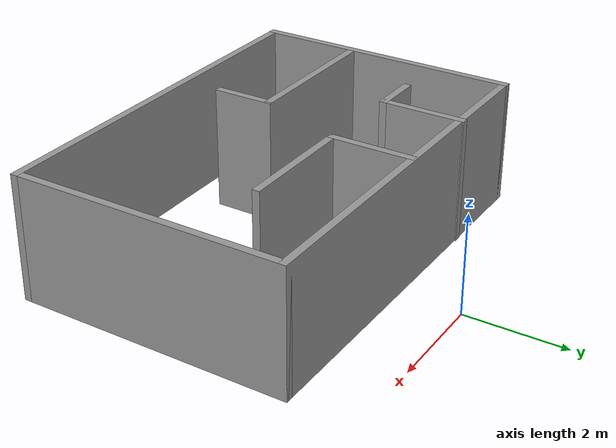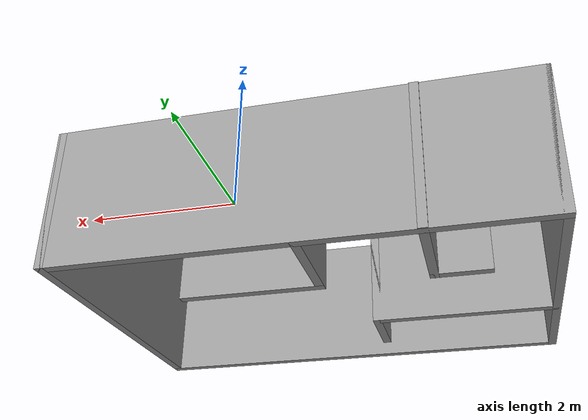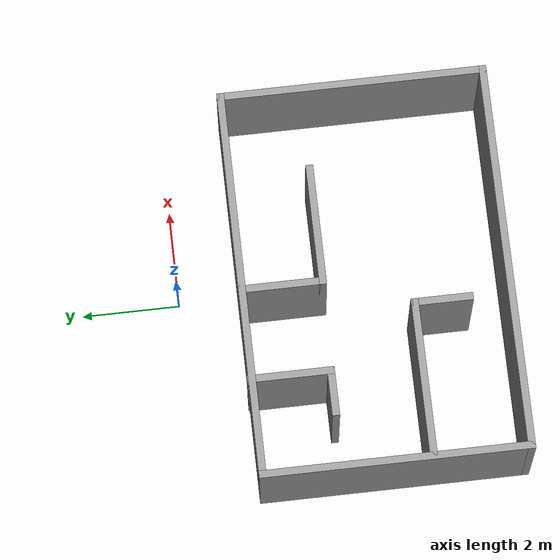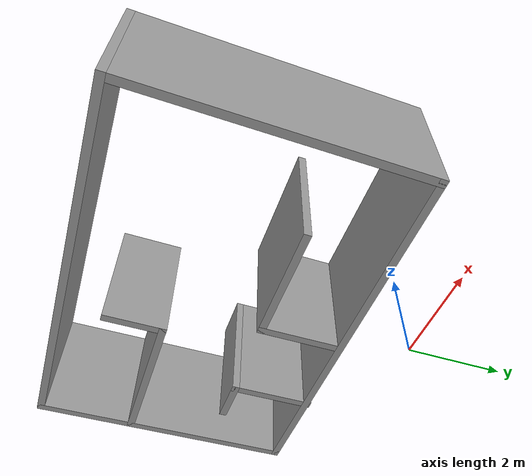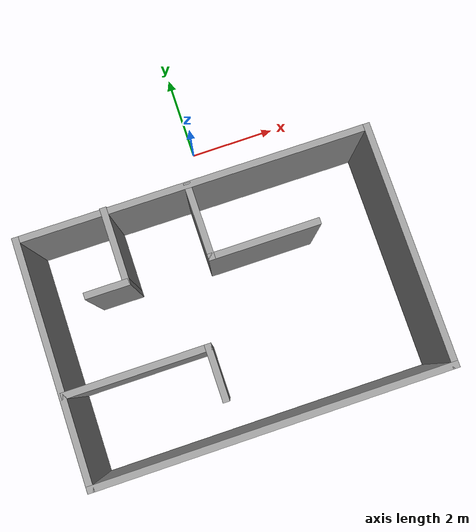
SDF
<?xml version='1.0'?>
<sdf version='1.7'>
  <model name='chapt7room'>
    <pose>-0.306159 -3.35866 0 0 -0 0</pose>
    <link name='Wall_0'>
      <collision name='Wall_0_Collision'>
        <geometry>
          <box>
            <size>8 0.15 2.5</size>
          </box>
        </geometry>
        <pose>0 0 1.25 0 -0 0</pose>
      </collision>
      <visual name='Wall_0_Visual'>
        <pose>0 0 1.25 0 -0 0</pose>
        <geometry>
          <box>
            <size>8 0.15 2.5</size>
          </box>
        </geometry>
        <material>
          <script>
            <uri>file://media/materials/scripts/gazebo.material</uri>
            <name>Gazebo/Grey</name>
          </script>
          <ambient>1 1 1 1</ambient>
        </material>
        <meta>
          <layer>0</layer>
        </meta>
      </visual>
      <pose>0 2.06634 0 0 -0 0</pose>
    </link>
    <link name='Wall_1'>
      <collision name='Wall_1_Collision'>
        <geometry>
          <box>
            <size>5.5 0.15 2.5</size>
          </box>
        </geometry>
        <pose>0 0 1.25 0 -0 0</pose>
      </collision>
      <visual name='Wall_1_Visual'>
        <pose>0 0 1.25 0 -0 0</pose>
        <geometry>
          <box>
            <size>5.5 0.15 2.5</size>
          </box>
        </geometry>
        <material>
          <script>
            <uri>file://media/materials/scripts/gazebo.material</uri>
            <name>Gazebo/Grey</name>
          </script>
          <ambient>1 1 1 1</ambient>
        </material>
        <meta>
          <layer>0</layer>
        </meta>
      </visual>
      <pose>3.925 -0.60866 0 0 -0 -1.5708</pose>
    </link>
    <link name='Wall_11'>
      <collision name='Wall_11_Collision'>
        <geometry>
          <box>
            <size>1.75 0.15 2.5</size>
          </box>
        </geometry>
        <pose>0 0 1.25 0 -0 0</pose>
      </collision>
      <visual name='Wall_11_Visual'>
        <pose>0 0 1.25 0 -0 0</pose>
        <geometry>
          <box>
            <size>1.75 0.15 2.5</size>
          </box>
        </geometry>
        <material>
          <script>
            <uri>file://media/materials/scripts/gazebo.material</uri>
            <name>Gazebo/Grey</name>
          </script>
          <ambient>1 1 1 1</ambient>
        </material>
        <meta>
          <layer>0</layer>
        </meta>
      </visual>
      <pose>-0.13158 1.24321 0 0 -0 -1.5708</pose>
    </link>
    <link name='Wall_12'>
      <collision name='Wall_12_Collision'>
        <geometry>
          <box>
            <size>2.5 0.15 2.5</size>
          </box>
        </geometry>
        <pose>0 0 1.25 0 -0 0</pose>
      </collision>
      <visual name='Wall_12_Visual'>
        <pose>0 0 1.25 0 -0 0</pose>
        <geometry>
          <box>
            <size>2.5 0.15 2.5</size>
          </box>
        </geometry>
        <material>
          <script>
            <uri>file://media/materials/scripts/gazebo.material</uri>
            <name>Gazebo/Grey</name>
          </script>
          <ambient>1 1 1 1</ambient>
        </material>
        <meta>
          <layer>0</layer>
        </meta>
      </visual>
      <pose>1.04342 0.443209 0 0 -0 0</pose>
    </link>
    <link name='Wall_2'>
      <collision name='Wall_2_Collision'>
        <geometry>
          <box>
            <size>8 0.15 2.5</size>
          </box>
        </geometry>
        <pose>0 0 1.25 0 -0 0</pose>
      </collision>
      <visual name='Wall_2_Visual'>
        <pose>0 0 1.25 0 -0 0</pose>
        <geometry>
          <box>
            <size>8 0.15 2.5</size>
          </box>
        </geometry>
        <material>
          <script>
            <uri>file://media/materials/scripts/gazebo.material</uri>
            <name>Gazebo/Grey</name>
          </script>
          <ambient>1 1 1 1</ambient>
        </material>
        <meta>
          <layer>0</layer>
        </meta>
      </visual>
      <pose>0 -3.28366 0 0 -0 3.14159</pose>
    </link>
    <link name='Wall_3'>
      <collision name='Wall_3_Collision'>
        <geometry>
          <box>
            <size>5.5 0.15 2.5</size>
          </box>
        </geometry>
        <pose>0 0 1.25 0 -0 0</pose>
      </collision>
      <visual name='Wall_3_Visual'>
        <pose>0 0 1.25 0 -0 0</pose>
        <geometry>
          <box>
            <size>5.5 0.15 2.5</size>
          </box>
        </geometry>
        <material>
          <script>
            <uri>file://media/materials/scripts/gazebo.material</uri>
            <name>Gazebo/Grey</name>
          </script>
          <ambient>1 1 1 1</ambient>
        </material>
        <meta>
          <layer>0</layer>
        </meta>
      </visual>
      <pose>-3.925 -0.60866 0 0 -0 1.5708</pose>
    </link>
    <link name='Wall_5'>
      <collision name='Wall_5_Collision'>
        <geometry>
          <box>
            <size>1.75 0.15 2.5</size>
          </box>
        </geometry>
        <pose>0 0 1.25 0 -0 0</pose>
      </collision>
      <visual name='Wall_5_Visual'>
        <pose>0 0 1.25 0 -0 0</pose>
        <geometry>
          <box>
            <size>1.75 0.15 2.5</size>
          </box>
        </geometry>
        <material>
          <script>
            <uri>file://media/materials/scripts/gazebo.material</uri>
            <name>Gazebo/Grey</name>
          </script>
          <ambient>1 1 1 1</ambient>
        </material>
        <meta>
          <layer>0</layer>
        </meta>
      </visual>
      <pose>-1.98203 1.28947 0 0 -0 -1.5708</pose>
    </link>
    <link name='Wall_6'>
      <collision name='Wall_6_Collision'>
        <geometry>
          <box>
            <size>1 0.15 2.5</size>
          </box>
        </geometry>
        <pose>0 0 1.25 0 -0 0</pose>
      </collision>
      <visual name='Wall_6_Visual'>
        <pose>0 0 1.25 0 -0 0</pose>
        <geometry>
          <box>
            <size>1 0.15 2.5</size>
          </box>
        </geometry>
        <material>
          <script>
            <uri>file://media/materials/scripts/gazebo.material</uri>
            <name>Gazebo/Grey</name>
          </script>
          <ambient>1 1 1 1</ambient>
        </material>
        <meta>
          <layer>0</layer>
        </meta>
      </visual>
      <pose>-2.40703 0.48947 0 0 -0 3.14159</pose>
    </link>
    <link name='Wall_8'>
      <collision name='Wall_8_Collision'>
        <geometry>
          <box>
            <size>3.25 0.15 2.5</size>
          </box>
        </geometry>
        <pose>0 0 1.25 0 -0 0</pose>
      </collision>
      <visual name='Wall_8_Visual'>
        <pose>0 0 1.25 0 -0 0</pose>
        <geometry>
          <box>
            <size>3.25 0.15 2.5</size>
          </box>
        </geometry>
        <material>
          <script>
            <uri>file://media/materials/scripts/gazebo.material</uri>
            <name>Gazebo/Grey</name>
          </script>
          <ambient>1 1 1 1</ambient>
        </material>
        <meta>
          <layer>0</layer>
        </meta>
      </visual>
      <pose>-2.32874 -1.33386 0 0 -0 0</pose>
    </link>
    <link name='Wall_9'>
      <collision name='Wall_9_Collision'>
        <geometry>
          <box>
            <size>1.25 0.15 2.5</size>
          </box>
        </geometry>
        <pose>0 0 1.25 0 -0 0</pose>
      </collision>
      <visual name='Wall_9_Visual'>
        <pose>0 0 1.25 0 -0 0</pose>
        <geometry>
          <box>
            <size>1.25 0.15 2.5</size>
          </box>
        </geometry>
        <material>
          <script>
            <uri>file://media/materials/scripts/gazebo.material</uri>
            <name>Gazebo/Grey</name>
          </script>
          <ambient>1 1 1 1</ambient>
        </material>
        <meta>
          <layer>0</layer>
        </meta>
      </visual>
      <pose>-0.778739 -1.88386 0 0 -0 -1.5708</pose>
    </link>
    <static>1</static>
  </model>
</sdf>
